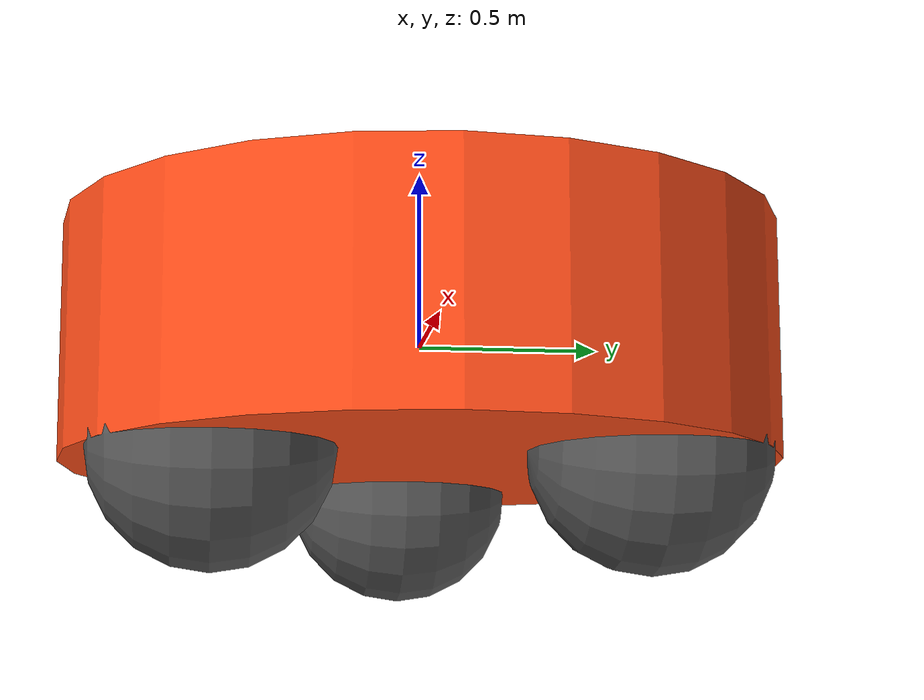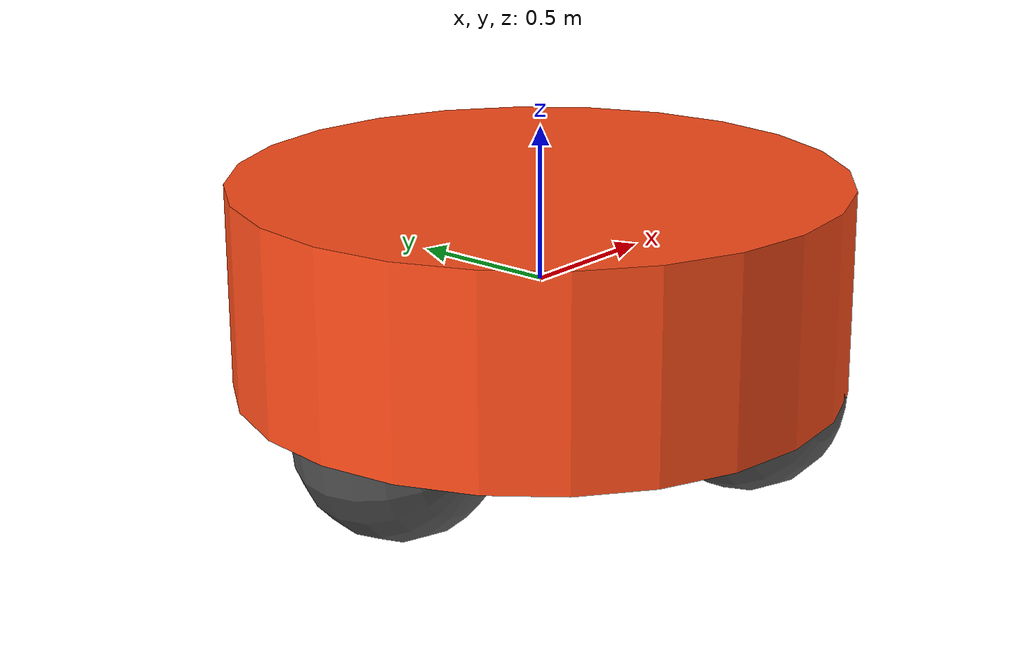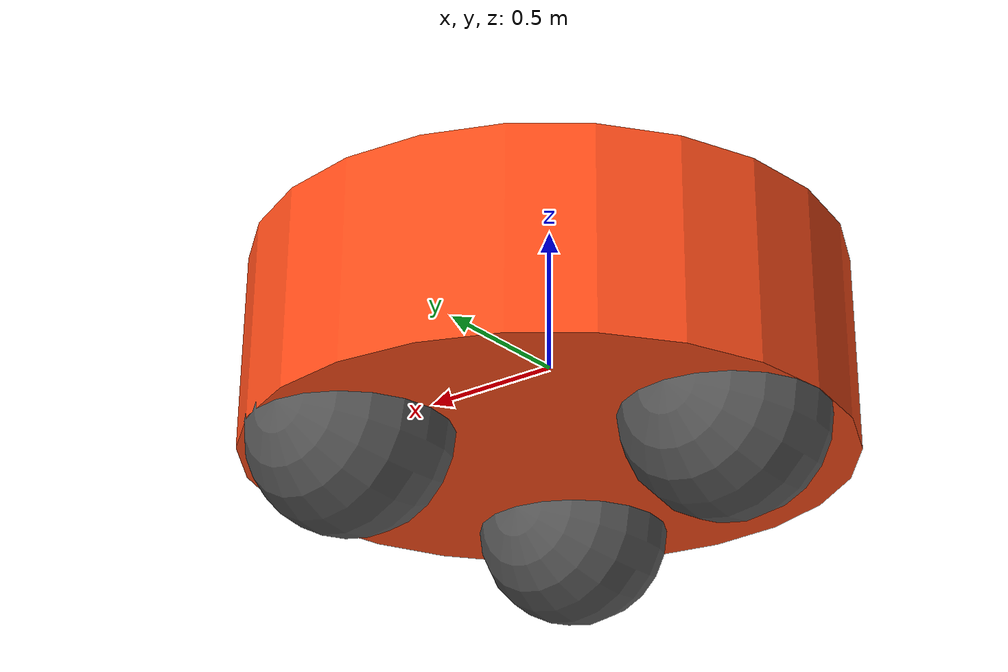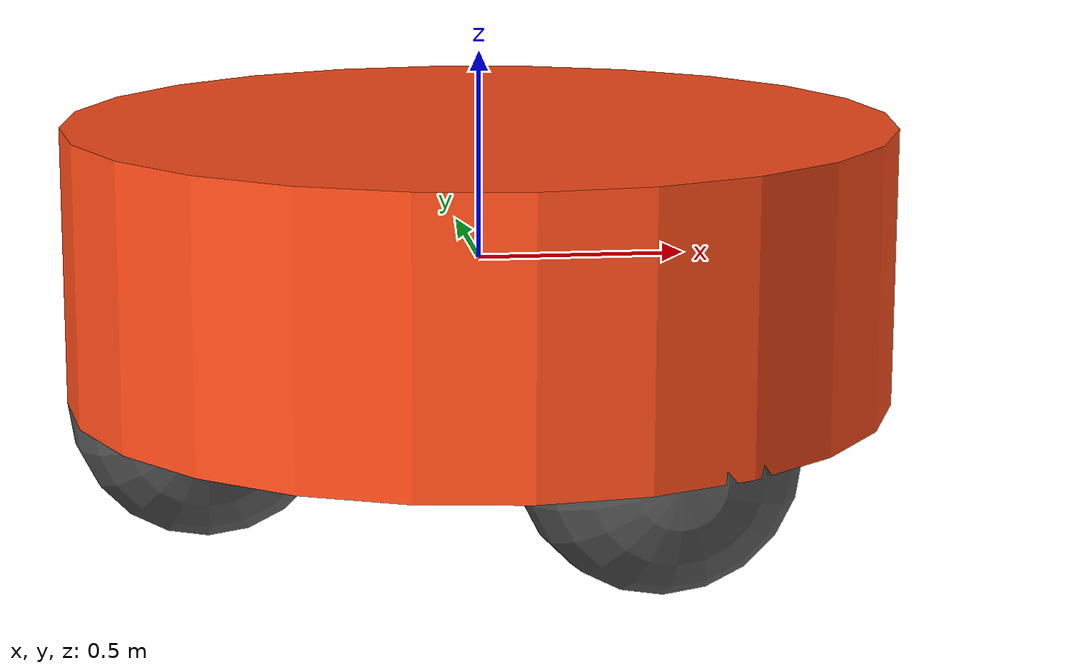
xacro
<?xml version="1.0"?>
<robot xmlns:xacro="http://www.ros.org/wiki/xacro"  name="robot">

    <xacro:include filename="parameter_declaration.xacro" />
    <xacro:include filename="inertia_macros.xacro" />
    <xacro:include filename="gazebo_colors.xacro" />

    <link name="base_link">

    </link>
        <joint name="hull_joint" type="fixed">
        <parent link="base_link"/>
        <child link="hull"/>
        <origin xyz="0 0 0"/>
    </joint>

    <link name="hull">
        <visual>
            <origin xyz="0 0 0" rpy="0 0 0"/>
            <geometry>
                <cylinder radius="${hull_radius}" length="${hull_thickness}"/>
            </geometry>
            <material name="orange">
                <color rgba="1 0.3 0.1 1"/>
            </material>
        </visual>
        <collision>
            <origin xyz="0 0 0" rpy="0 0 0"/>
            <geometry>
                <cylinder radius="1" length="0.5"/>
            </geometry>
        </collision>
        <xacro:inertial_cylinder mass="${hull_mass}" radius="1" length="0.5">
            <origin xyz="0 0 0" rpy="0 0 0"/>
        </xacro:inertial_cylinder>
    </link>

    <joint name="left_wheel_joint" type="continuous">
        <parent link="hull"/>
        <child link="left_wheel"/>
        <origin xyz="${wheel_offset_x_front} ${wheel_offset_y} ${-wheel_offset_z}" rpy="${-pi/2} 0 0" />
        <axis xyz="0 0 1"/>
    </joint>

    <link name="left_wheel">
        <visual>
            <geometry>
                <sphere radius="${wheel_radius}"/>
            </geometry>
            <material name="gray">
                <color rgba="0.33 0.33 0.33 1"/>
            </material>
        </visual>
        <collision>
            <geometry>
                <sphere radius="${wheel_radius}"/>
            </geometry>
        </collision>
        <xacro:inertial_sphere mass="${wheel_mass}" radius="${wheel_radius}">
            <origin xyz="0 0 0" rpy="0 0 0"/>
        </xacro:inertial_sphere>
    </link>

    <joint name="right_wheel_joint" type="continuous">
        <parent link="hull"/>
        <child link="right_wheel"/>
        <origin xyz="${wheel_offset_x_front} ${-wheel_offset_y} ${-wheel_offset_z}" rpy="${-pi/2} 0 0" />
        <axis xyz="0 0 1"/>
    </joint>

    <link name="right_wheel">
        <visual>
            <geometry>
                <sphere radius="${wheel_radius}"/>
            </geometry>
            <material name="gray">
                <color rgba="0.33 0.33 0.33 1"/>
            </material>
        </visual>
        <collision>
            <geometry>
                <sphere radius="${wheel_radius}"/>
            </geometry>
        </collision>
        <xacro:inertial_sphere mass="${wheel_mass}" radius="${wheel_radius}">
            <origin xyz="0 0 0" rpy="0 0 0"/>
        </xacro:inertial_sphere>
    </link>

    <joint name="rear_wheel_joint" type="continuous">
        <parent link="hull"/>
        <child link="rear_wheel"/>
        <origin xyz="${wheel_offset_x_rear} 0 ${-wheel_offset_z}" rpy="${pi/2} 0 0" />
        <axis xyz="0 0 1"/>
    </joint>

    <link name="rear_wheel">
        <visual>
            <geometry>
                <sphere radius="${wheel_radius}"/>
            </geometry>
            <material name="gray">
                <color rgba="0.33 0.33 0.33 1"/>
            </material>
        </visual>
        <collision>
            <geometry>
                <sphere radius="${wheel_radius}"/>
            </geometry>
        </collision>
        <xacro:inertial_sphere mass="${wheel_mass}" radius="${wheel_radius}">
            <origin xyz="0 0 0" rpy="0 0 0"/>
        </xacro:inertial_sphere>
    </link>

    <joint name="gps_joint" type="fixed">
        <parent link="hull"/>
        <child link="gps_frame"/>
        <origin xyz="0 0 0" rpy="0 0 0"/>
    </joint>

    <link name="gps_frame">
        <inertial>
            <origin xyz="0 0 0" rpy="0 0 0"/>
            <mass value="${wheel_mass}"/>
            <inertia ixx="0.01" ixy="0" ixz="0" iyy="0.01" iyz="0" izz="0.01"/>
        </inertial>
    </link>

    <gazebo reference="gps_frame">
        <sensor name="gps_sensor" type="gps">
            <always_on>true</always_on>
            <update_rate>30</update_rate>
            <pose>0 0 0 0 0 0</pose>
            <gps>
            </gps>
            <plugin name="gps_controller" filename="libgazebo_ros_gps_sensor.so">
                <ros>
                    <remapping>gps_controller/out:=/gps/fix</remapping>
                </ros>
                <frame_name>gps_frame</frame_name>
            </plugin>
        </sensor>
        <material>Gazebo/Grey</material>
    </gazebo>

    <joint name="imu_joint" type="fixed">
        <parent link="hull"/>
        <child link="imu_frame"/>
        <origin xyz="0 0 0" rpy="0 0 0"/>
    </joint>

    <link name="imu_frame">
        <inertial>
            <origin xyz="0 0 0" rpy="0 0 0"/>
            <mass value="0.01"/>
            <inertia ixx="0.001" ixy="0" ixz="0" iyy="0.001" iyz="0" izz="0.001"/>
        </inertial>
    </link>

  <gazebo reference="imu_frame">
    <sensor name="imu_sensor" type="imu">
      <always_on>true</always_on>
      <update_rate>10</update_rate>
      <visualize>true</visualize>
      <topic>__default_topic__</topic>
      <plugin filename="libgazebo_ros_imu_sensor.so" name="imu_controller">
        <ros>
            <remapping>imu_controller/out:=/imu</remapping>
        </ros>
        <topicName>imu</topicName>
        <bodyName>imu_frame</bodyName>
        <updateRateHZ>10.0</updateRateHZ>
        <gaussianNoise>0.0</gaussianNoise>
        <xyzOffset>0 0 0</xyzOffset>
        <rpyOffset>0 0 0</rpyOffset>
        <frameName>imu_frame</frameName>
        <initialOrientationAsReference>false</initialOrientationAsReference>
      </plugin>
      <pose>0 0 0 0 0 0</pose>
    </sensor>
  </gazebo>

    <joint name="laser_joint" type="fixed">
        <parent link="hull"/>
        <child link="laser_frame"/>
        <origin xyz="0 0 0" rpy="0 0 0 "/>
    </joint>

    <link name="laser_frame">
        <xacro:inertial_cylinder mass="0.1" length="0.04" radius="0.05">
            <origin xyz="0 0 0" rpy="0 0 0"/>
        </xacro:inertial_cylinder>
    </link>

    <gazebo reference="laser_frame">
        <material>Gazebo/Red</material>

        <sensor name="laser" type="ray">
            <pose> 0 0 0 0 0 0 </pose>
            <visualize>true</visualize>
            <update_rate>30</update_rate>
            <ray>
                <scan>
                    <horizontal>
                        <samples>90</samples>
                        <min_angle>-3.14</min_angle>
                        <max_angle>3.14</max_angle>
                    </horizontal>
                    <vertical>
                        <samples>1</samples>
                    </vertical>
                </scan>
                <range>
                    <min>1.01</min>
                    <max>12</max>
                </range>
            </ray>
            <plugin name="laser_controller" filename="libgazebo_ros_ray_sensor.so">
                <ros>
                    <argument>~/out:=scan</argument>
                </ros>
                <frame_name>laser_frame</frame_name>
            </plugin>
        </sensor>
    </gazebo>

</robot>

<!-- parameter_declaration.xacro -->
<robot xmlns:xacro="http://www.ros.org/wiki/xacro" >

    <!-- This file is not a robot in and of itself, it just contains some useful tags that could be included in any robot -->

    <xacro:arg name="use_ros2_control" default="true"/>

    <xacro:property name="hull_radius" value="1.00"/>
    <xacro:property name="hull_thickness" value="0.67"/>
    <xacro:property name="hull_mass" value="1.00"/>
    <xacro:property name="wheel_radius" value="0.33"/>
    <xacro:property name="wheel_mass" value="0.1"/>

    <xacro:property name="side_length" value="${(hull_radius - wheel_radius) * sqrt(3)}"/>
    <xacro:property name="wheel_offset_x_front" value="${sqrt(3) / 6 * side_length}"/>
    <xacro:property name="wheel_offset_y" value="${side_length / 2}"/>
    <xacro:property name="wheel_offset_x_rear" value="${-sqrt(3) / 3 * side_length}"/>
    <xacro:property name="wheel_offset_z" value="${hull_thickness/2}"/>

    <material name="orange">
        <color rgba="1 0.3 0.1 1"/>
    </material>

    <material name="gray">
        <color rgba="0.33 0.33 0.33 1"/>
    </material>

</robot>
